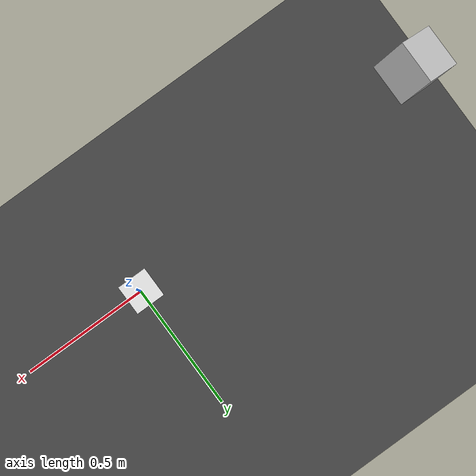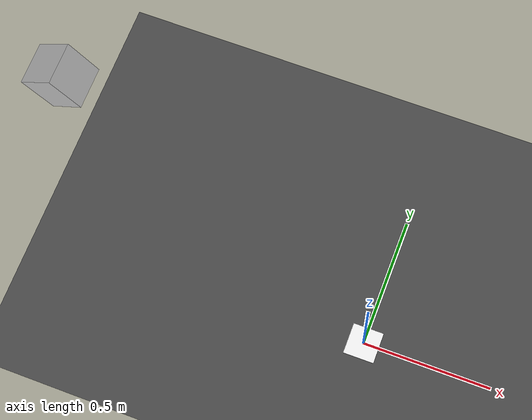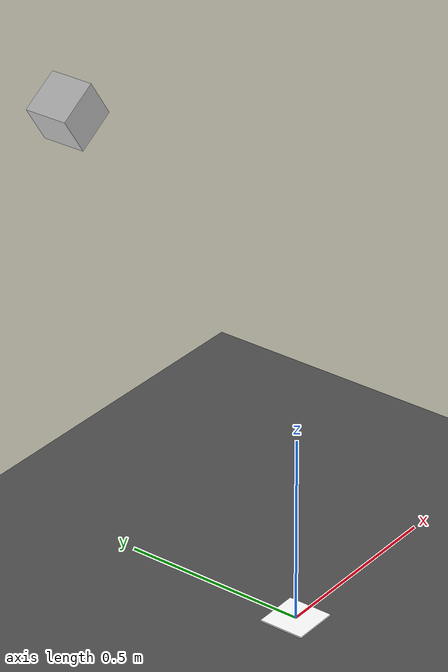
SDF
<sdf version="1.7">
 <world name="marker_world">
  <light name="sun" type="directional">
   <pose>0 0 10 0 -0 0</pose>
   <diffuse>0.8 0.8 0.8 1</diffuse>
   <specular>0.2 0.2 0.2 1</specular>
   <attenuation>
    <range>1000</range>
    <constant>0.9</constant>
    <linear>0.01</linear>
    <quadratic>0.001</quadratic>
   </attenuation>
   <direction>-0.5 0.1 -0.9</direction>
   <spot><inner_angle>0</inner_angle><outer_angle>0</outer_angle><falloff>0</falloff></spot>
  </light>
  <model name="ground_plane">
   <static>1</static>
   <link name="link">
    <collision name="collision">
     <geometry><plane><normal>0 0 1</normal><size>100 100</size></plane></geometry>
     <surface><friction><ode><mu>100</mu><mu2>50</mu2></ode></friction></surface>
    </collision>
    <visual name="visual">
     <cast_shadows>0</cast_shadows>
     <geometry><plane><normal>0 0 1</normal><size>100 100</size></plane></geometry>
     <material>
      <script><uri>file://media/materials/scripts/gazebo.material</uri><name>Gazebo/DarkGrey</name></script>
     </material>
    </visual>
   </link>
  </model>
  <model name="camera">
   <static>1</static>
   <pose>-0.779444 0 1.6565 0 1 0</pose>
   <link name="camera_link">
    <visual name="camera_visual"><geometry><box><size>0.1 0.1 0.1</size></box></geometry></visual>
    <sensor name="global_camera" type="camera">
     <update_rate>30</update_rate>
     <always_on>1</always_on>
     <camera name="global_camera">
      <horizontal_fov>1.2</horizontal_fov>
      <image><width>1920</width><height>1080</height><format>R8G8B8</format></image>
      <clip><near>0.01</near><far>100</far></clip>
     </camera>
     <plugin name="camera_controller" filename="libgazebo_ros_camera.so">
      <alwaysOn>1</alwaysOn>
      <updateRate>30.0</updateRate>
      <cameraName>global_camera</cameraName>
      <imageTopicName>image_raw</imageTopicName>
      <cameraInfoTopicName>camera_info</cameraInfoTopicName>
      <frameName>camera_link</frameName>
      <hackBaseline>0.07</hackBaseline>
      <distortionK1>0.0</distortionK1>
      <distortionK2>0.0</distortionK2>
      <distortionK3>0.0</distortionK3>
      <distortionT1>0.0</distortionT1>
      <distortionT2>0.0</distortionT2>
     </plugin>
    </sensor>
   </link>
  </model>
  <gravity>0 0 -9.8</gravity>
  <magnetic_field>6e-06 2.3e-05 -4.2e-05</magnetic_field>
  <atmosphere type="adiabatic"/>
  <physics type="ode">
   <max_step_size>0.001</max_step_size>
   <real_time_factor>1</real_time_factor>
   <real_time_update_rate>1000</real_time_update_rate>
  </physics>
  <scene><ambient>0.4 0.4 0.4 1</ambient><background>0.7 0.7 0.7 1</background><shadows>1</shadows></scene>
  <spherical_coordinates>
   <surface_model>EARTH_WGS84</surface_model>
   <latitude_deg>0</latitude_deg>
   <longitude_deg>0</longitude_deg>
   <elevation>0</elevation>
   <heading_deg>0</heading_deg>
  </spherical_coordinates>
  <model name="ground_marker">
   <link name="ground_marker_link">
    <inertial>
     <mass>1</mass>
     <inertia><ixx>1</ixx><ixy>0</ixy><ixz>0</ixz><iyy>1</iyy><iyz>0</iyz><izz>1</izz></inertia>
    </inertial>
    <visual name="ground_marker_visual">
     <geometry><box><size>0.12 0.12 0.004</size></box></geometry>
     <material>
      <shader type="pixel"><normal_map>__default__</normal_map></shader>
      <script><name>ArucoMarker-0</name><uri>__default__</uri></script>
      <ambient>1 1 1 1</ambient>
      <diffuse>1 1 1 1</diffuse>
      <specular>0 0 0 1</specular>
      <emissive>0 0 0 1</emissive>
     </material>
    </visual>
    <material>ArucoMarker-0</material>
   </link>
   <static>1</static>
   <pose>0 0 0 0 -0 0.004</pose>
  </model>
 </world>
</sdf>
